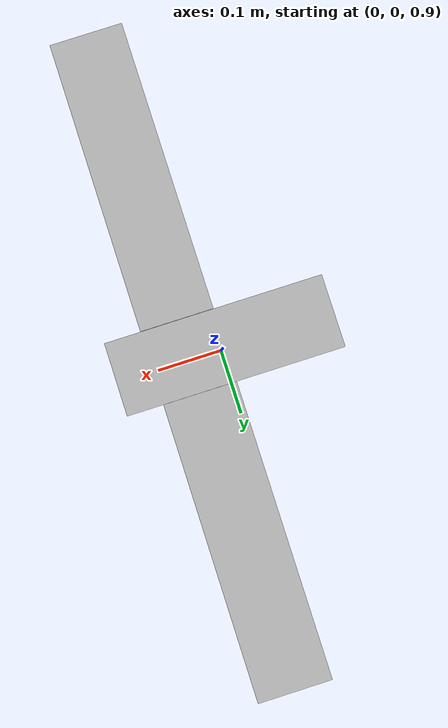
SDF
<?xml version="1.0"?>
<sdf version='1.5'>
  <model name='plane'>
    <static>false</static>
    <pose>0 0 1 0 0 0</pose>
    <link name='base_link'>
      <pose>0 0 0 0 0 0</pose>
      <inertial>
        <pose>0 0 0 0 0 0</pose>
        <mass>0.28</mass>
        <inertia>
          <ixx>0.197563</ixx>
          <ixy>0</ixy>
          <ixz>0</ixz>
          <iyy>0.1458929</iyy>
          <iyz>0</iyz>
          <izz>0.1477</izz>
        </inertia>
      </inertial>
      <collision name='base_link_collision'>
        <geometry>
          <box>
            <size>0.3 0.1 0.1</size>
          </box>
        </geometry>
      </collision>
      <visual name='base_link_visual'>
        <geometry>
          <box>
            <size>0.3 0.1 0.1</size>
          </box>
        </geometry>
      </visual>
    </link>

    <joint name='left_wing_joint' type='revolute'>
      <child>left_wing</child>
      <parent>base_link</parent>
      <pose>0.00 -0.205 0 0 0 0</pose>
      <axis>
        <xyz>1 0 0</xyz>
        <limit>
          <lower>-0.3</lower>
          <upper>0.3</upper>
        </limit>
        <dynamics>
          <damping>1.000</damping>
        </dynamics>
      </axis>
      <physics>
        <ode>
          <implicit_spring_damper>1</implicit_spring_damper>
        </ode>
      </physics>
    </joint>
    <link name='left_wing'>
      <pose>0.05 0.25 0.05 0 0 0</pose>
      <inertial>
        <pose>0 0 0 0 0 0</pose>
        <mass>0.01</mass>
        <inertia>
          <ixx>0.197563</ixx>
          <ixy>0</ixy>
          <ixz>0</ixz>
          <iyy>0.1458929</iyy>
          <iyz>0</iyz>
          <izz>0.1477</izz>
        </inertia>
      </inertial>
      <collision name='left_wing_collision'>
        <geometry>
          <box>
            <size>0.1 0.4 0.01</size>
          </box>
        </geometry>
      </collision>
      <visual name='left_wing_visual'>
        <geometry>
          <box>
            <size>0.1 0.4 0.01</size>
          </box>
        </geometry>
      </visual>
    </link>
    <joint name='right_wing_joint' type='revolute'>
      <child>right_wing</child>
      <parent>base_link</parent>
      <pose>0.00 0.205 0 0 0 0</pose>
      <axis>
        <xyz>1 0 0</xyz>
        <limit>
          <lower>-10</lower>
          <upper>10</upper>
        </limit>
        <dynamics>
          <damping>1.000</damping>
        </dynamics>
      </axis>
      <physics>
        <ode>
          <implicit_spring_damper>1</implicit_spring_damper>
        </ode>
      </physics>
    </joint>
    <link name='right_wing'>
      <pose>0.05 -0.25 0.05 0 0 0</pose>
      <inertial>
        <pose>0 0 0 0 0 0</pose>
        <mass>0.01</mass>
        <inertia>
          <ixx>0.00003</ixx>
          <ixy>0</ixy>
          <ixz>0</ixz>
          <iyy>0.001</iyy>
          <iyz>0</iyz>
          <izz>0.0000001</izz>
        </inertia>
      </inertial>
      <collision name='right_wing_collision'>
        <geometry>
          <box>
            <size>0.1 0.4 0.01</size>
          </box>
        </geometry>
      </collision>
      <visual name='right_wing_visual'>
        <geometry>
          <box>
            <size>0.1 0.4 0.01</size>
          </box>
        </geometry>
      </visual>
    </link>
   <plugin name='flap' filename='libgazebo_flapping_control.so'>
      <robotNamespace></robotNamespace>
      <leftwing>left_wing_joint</leftwing>
      <rightwing>right_wing_joint</rightwing>
      <amplitude>0.3</amplitude>
      <wingspan>1.2</wingspan>
      <a0>0.05984281113</a0>
      <lcp>-0.05 0.1 0.05</lcp>
      <rcp>-0.05 -0.1 0.05</rcp>
      <twist>0.05</twist>
      <chord>0.225</chord>
      <link_name>base_link</link_name>
      <frequency>8</frequency>
      <forward>1 0 0</forward>
      <upward>0 0 1</upward>
      <rho>1.295</rho>
      <radial_symmetry>0</radial_symmetry>
   </plugin>
  </model>
</sdf>
